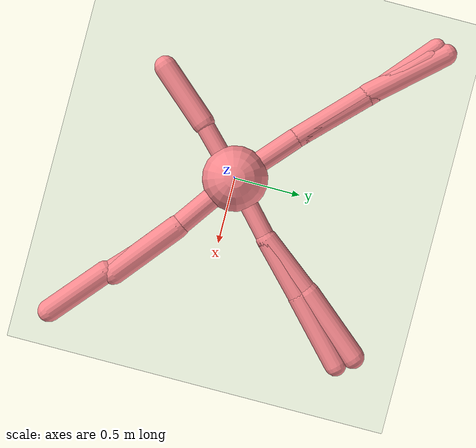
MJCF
<mujoco model="ant">
  <compiler inertiafromgeom="true" angle="degree"/>
  <option timestep="0.016" iterations="50" tolerance="1e-10" solver="Newton" jacobian="dense" cone="pyramidal"/>
  <default>
    <joint armature="1" damping="0.1" limited="true"/>
    <geom condim="3" density="5.0" friction="1.5 0.1 0.1" margin="0.01" rgba=".98 .54 .56 1."/>
  </default>
  <visual>
    <headlight ambient=".1 .1 .1" diffuse=".6 .6 .6" specular="0.3 0.3 0.3"/>
    <map znear=".01"/>
    <quality shadowsize="16384"/>
  </visual>
  <worldbody>
    <light cutoff="100" diffuse="1 1 1" dir="-0 0 -1.3" directional="true" exponent="1" pos="0 0 1.3" specular=".1 .1 .1"/>
    <geom condim="3" name="floor" pos="0 0 0" rgba="0.8 0.9 0.8 1" size="200 200 .125" type="plane" material="grid_new"/>
    <body name="0" pos="0 0 0">
      <camera name="track" mode="trackcom" pos="0 -3 0.3" xyaxes="1 0 0 0 0 1"/>
      <geom pos="0 0 0" size="0.25" type="sphere"/>
      <freejoint name="root"/>
      <body name="1" pos="0 0 0">
        <joint axis="-0.707107 0.707107 0" name="1_joint" pos="0 0 0" range="-30 30" type="hinge"/>
        <geom fromto="-0.000308 -0.00028 0 0.381454 0.347019 0" size="0.071746" type="capsule"/>
        <body name="11" pos="0.381454 0.347019 0">
          <joint axis="-0.707107 0.707107 0" name="11_joint" pos="0 0 0" range="-30 30" type="hinge"/>
          <geom fromto="-0.001152 -0.001474 0 0.314509 0.402582 0" size="0.081842" type="capsule"/>
          <body name="111" pos="0.314509 0.402582 0">
            <joint axis="-0.707107 0.707107 0" name="111_joint" pos="0 0 0" range="-30 30" type="hinge"/>
            <geom fromto="-0.001958 -0.002315 0 0.376857 0.44559 0" size="0.090577" type="capsule"/>
          </body>
        </body>
        <body name="21" pos="0.381454 0.347019 0">
          <joint axis="-0.707107 0.707107 0" name="21_joint" pos="0 0 0" range="-30 30" type="hinge"/>
          <geom fromto="-0 -0 0 0.364361 0.348275 0" size="0.080258" type="capsule"/>
          <body name="121" pos="0.364361 0.348275 0">
            <joint axis="-0.707107 0.707107 0" name="121_joint" pos="0 0 0" range="-30 30" type="hinge"/>
            <geom fromto="-0.007067 -0.006555 0 0.420655 0.390163 0" size="0.083208" type="capsule"/>
          </body>
        </body>
      </body>
      <body name="2" pos="0 0 0">
        <joint axis="-0.707107 -0.707107 0" name="2_joint" pos="0 0 0" range="-30 30" type="hinge"/>
        <geom fromto="0.001794 -0.001594 0 -0.408438 0.363042 0" size="0.080233" type="capsule"/>
        <body name="12" pos="-0.408438 0.363042 0">
          <joint axis="-0.707107 -0.707107 0" name="12_joint" pos="0 0 0" range="-30 30" type="hinge"/>
          <geom fromto="0.001116 -0.001079 0 -0.458713 0.443322 0" size="0.078994" type="capsule"/>
          <body name="112" pos="-0.458713 0.443322 0">
            <joint axis="-0.707107 -0.707107 0" name="112_joint" pos="0 0 0" range="-30 30" type="hinge"/>
            <geom fromto="0.001192 -0.001021 0 -0.475596 0.407329 0" size="0.06565" type="capsule"/>
          </body>
          <body name="212" pos="-0.458713 0.443322 0">
            <joint axis="-0.707107 -0.707107 0" name="212_joint" pos="0 0 0" range="-30 30" type="hinge"/>
            <geom fromto="0.000296 -0.000333 0 -0.435666 0.49004 0" size="0.084085" type="capsule"/>
          </body>
        </body>
        <body name="22" pos="-0.408438 0.363042 0">
          <joint axis="-0.707107 -0.707107 0" name="22_joint" pos="0 0 0" range="-30 30" type="hinge"/>
          <geom fromto="0.000131 -0.000131 0 -0.444215 0.442871 0" size="0.078142" type="capsule"/>
          <body name="122" pos="-0.444215 0.442871 0">
            <joint axis="-0.707107 -0.707107 0" name="122_joint" pos="0 0 0" range="-30 30" type="hinge"/>
            <geom fromto="0.000364 -0.000344 0 -0.397491 0.375405 0" size="0.079321" type="capsule"/>
          </body>
        </body>
      </body>
      <body name="3" pos="0 0 0">
        <joint axis="0.707107 -0.707107 0" name="3_joint" pos="0 0 0" range="-30 30" type="hinge"/>
        <geom fromto="0.001744 0.001715 0 -0.346741 -0.340952 0" size="0.072964" type="capsule"/>
        <body name="13" pos="-0.346741 -0.340952 0">
          <joint axis="0.707107 -0.707107 0" name="13_joint" pos="0 0 0" range="-30 30" type="hinge"/>
          <geom fromto="0.001 0.001136 0 -0.331557 -0.376495 0" size="0.087522" type="capsule"/>
        </body>
      </body>
      <body name="4" pos="0 0 0">
        <joint axis="0.707107 0.707107 0" name="4_joint" pos="0 0 0" range="-30 30" type="hinge"/>
        <geom fromto="-0.001041 0.000743 0 0.463555 -0.330985 0" size="0.081574" type="capsule"/>
        <body name="14" pos="0.463555 -0.330985 0">
          <joint axis="0.707107 0.707107 0" name="14_joint" pos="0 0 0" range="-30 30" type="hinge"/>
          <geom fromto="-0.003345 0.002733 0 0.454391 -0.371342 0" size="0.090174" type="capsule"/>
        </body>
        <body name="24" pos="0.463555 -0.330985 0">
          <joint axis="0.707107 0.707107 0" name="24_joint" pos="0 0 0" range="-30 30" type="hinge"/>
          <geom fromto="-0.000002 0.000002 0 0.467556 -0.437659 0" size="0.065697" type="capsule"/>
          <body name="124" pos="0.467556 -0.437659 0">
            <joint axis="0.707107 0.707107 0" name="124_joint" pos="0 0 0" range="-30 30" type="hinge"/>
            <geom fromto="-0.004619 0.003972 0 0.385261 -0.331315 0" size="0.086946" type="capsule"/>
          </body>
        </body>
      </body>
    </body>
  </worldbody>
  <actuator>
    <motor ctrllimited="true" ctrlrange="-1.0 1.0" joint="1_joint" gear="145.507767" name="1_joint"/>
    <motor ctrllimited="true" ctrlrange="-1.0 1.0" joint="2_joint" gear="114.7763" name="2_joint"/>
    <motor ctrllimited="true" ctrlrange="-1.0 1.0" joint="3_joint" gear="138.10891" name="3_joint"/>
    <motor ctrllimited="true" ctrlrange="-1.0 1.0" joint="4_joint" gear="167.826407" name="4_joint"/>
    <motor ctrllimited="true" ctrlrange="-1.0 1.0" joint="12_joint" gear="158.415489" name="12_joint"/>
    <motor ctrllimited="true" ctrlrange="-1.0 1.0" joint="14_joint" gear="177.251917" name="14_joint"/>
    <motor ctrllimited="true" ctrlrange="-1.0 1.0" joint="11_joint" gear="129.54" name="11_joint"/>
    <motor ctrllimited="true" ctrlrange="-1.0 1.0" joint="13_joint" gear="209.498335" name="13_joint"/>
    <motor ctrllimited="true" ctrlrange="-1.0 1.0" joint="112_joint" gear="135.885966" name="112_joint"/>
    <motor ctrllimited="true" ctrlrange="-1.0 1.0" joint="21_joint" gear="131.186105" name="21_joint"/>
    <motor ctrllimited="true" ctrlrange="-1.0 1.0" joint="22_joint" gear="163.101496" name="22_joint"/>
    <motor ctrllimited="true" ctrlrange="-1.0 1.0" joint="24_joint" gear="126.070633" name="24_joint"/>
    <motor ctrllimited="true" ctrlrange="-1.0 1.0" joint="212_joint" gear="72.7482" name="212_joint"/>
    <motor ctrllimited="true" ctrlrange="-1.0 1.0" joint="111_joint" gear="174.102954" name="111_joint"/>
    <motor ctrllimited="true" ctrlrange="-1.0 1.0" joint="121_joint" gear="114.423858" name="121_joint"/>
    <motor ctrllimited="true" ctrlrange="-1.0 1.0" joint="122_joint" gear="149.60285" name="122_joint"/>
    <motor ctrllimited="true" ctrlrange="-1.0 1.0" joint="124_joint" gear="134.039698" name="124_joint"/>
  </actuator>
  <asset>
    <texture type="skybox" builtin="gradient" rgb1=".4 .5 .6" rgb2="0 0 0" width="100" height="100"/>
    <texture builtin="flat" height="1278" mark="cross" markrgb="1 1 1" name="texgeom" random="0.01" rgb1="0.8 0.6 0.4" rgb2="0.8 0.6 0.4" type="cube" width="127"/>
    <texture builtin="checker" height="100" name="texplane" rgb1="0 0 0" rgb2="0.8 0.8 0.8" type="2d" width="100"/>
    <material name="MatPlane" reflectance="0.5" shininess="1" specular="1" texrepeat="60 60" texture="texplane"/>
    <material name="geom" texture="texgeom" texuniform="true"/>
    <texture name="grid_new" type="2d" builtin="checker" rgb1=".1 .3 .2" rgb2=".2 .4 .3" width="1000" height="1000" mark="none" markrgb=".8 .6 .4"/>
    <material name="grid_new" texture="grid_new" texrepeat="0.2 0.2" texuniform="true" reflectance=".2"/>
  </asset>
</mujoco>
